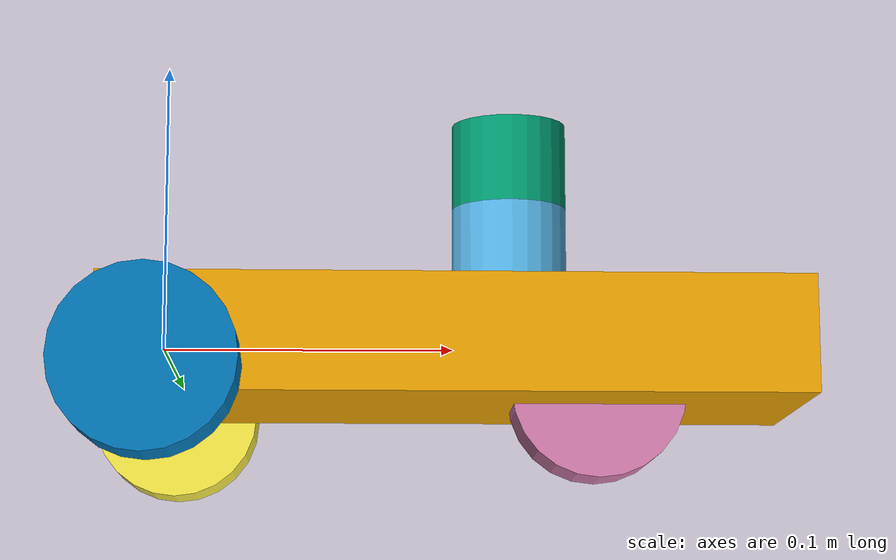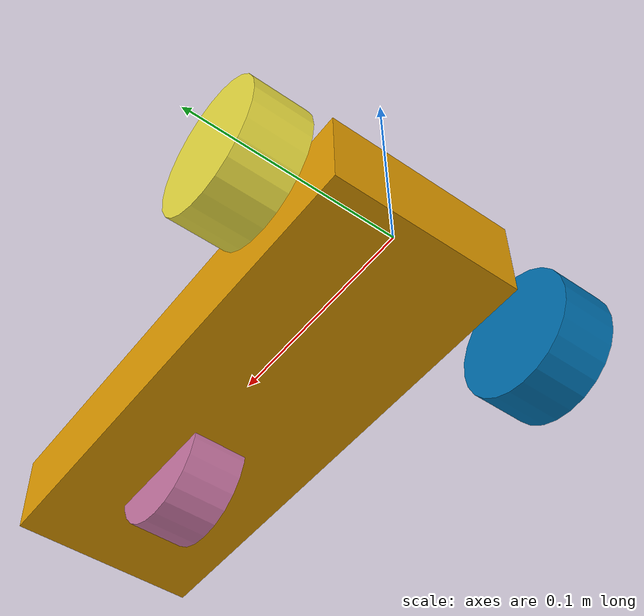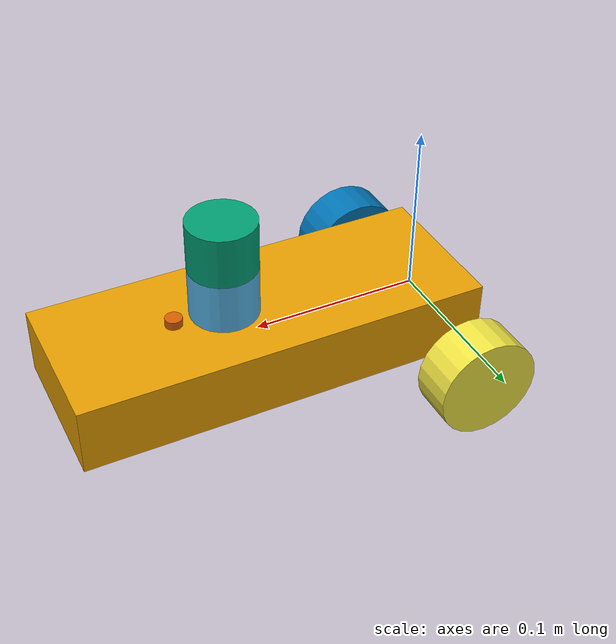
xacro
<?xml version="1.0"?>
<robot name="ackerman" xmlns:xacro="http://www.ros.org/wiki/xacro">

    <xacro:macro name="steeringless_wheel" params="x y name parent">

        <joint name="${name}_continuous" type="continuous">
            <origin xyz="${x} ${y} -0.015" rpy="-1.570796 0 0"/>
            <parent link="body_link"/>
            <child link="${name}_link"/>
            <axis xyz="0 0 1"/>
        </joint>

        <link name="${name}_link">
            <visual>
                <origin xyz="0 0 0" rpy="0 0 0"/>
                <geometry>
                    <cylinder radius="0.03" length="0.026"/>
                </geometry>
            </visual>
            <collision>
                <origin xyz="0 0 0" rpy="0 0 0"/>
                <geometry>
                    <cylinder radius="0.03" length="0.026"/>
                </geometry>
            </collision>
            <inertial>
                <origin xyz="0 0 0" rpy="0 0 0"/>
                <mass value="0.1"/>
                <inertia ixx="0.01" ixy="0" ixz="0" iyy="0.01" iyz="0" izz="0.01"/>
            </inertial>
        </link>

    </xacro:macro>

    <xacro:macro name="steering_wheel" params="x y name parent">

        <joint name="${name}_steering_revolute" type="revolute">
            <origin xyz="${x} ${y} 0" rpy="0 0 0"/>
            <parent link="${parent}"/>
            <child link="${name}_steering_link"/>
            <axis xyz="0 0 1"/>
            <limit lower="-1.0" upper="1.0" effort="10" velocity="1.0"/>
        </joint>

        <link name="${name}_steering_link">
            <visual>
                <origin xyz="0 0 0" rpy="0 0 0"/>
                <geometry>
                    <cylinder radius="0.005" length="0.05"/>
                </geometry>
            </visual>
            <collision>
                <origin xyz="0 0 0" rpy="0 0 0"/>
                <geometry>
                    <cylinder radius="0.005" length="0.05"/>
                </geometry>
            </collision>
            <inertial>
                <origin xyz="0 0 0" rpy="0 0 0"/>
                <mass value="0.01"/>
                <inertia ixx="0.001" ixy="0" ixz="0" iyy="0.001" iyz="0" izz="0.001"/>
            </inertial>
        </link>

        <joint name="${name}_joint" type="continuous">
                <origin xyz="0 0 -0.015" rpy="1.570796 0 0"/>
            <parent link="${name}_steering_link"/>
            <child link="${name}_link"/>
            <axis xyz="0 0 1"/>
        </joint>

        <link name="${name}_link">
            <visual>
                <origin xyz="0 0 0" rpy="0 0 0"/>
                <geometry>
                    <cylinder radius="0.03" length="0.026"/>
                </geometry>
            </visual>
            <collision>
                <origin xyz="0 0 0" rpy="0 0 0"/>
                <geometry>
                    <cylinder radius="0.03" length="0.026"/>
                </geometry>
            </collision>
            <inertial>
                <origin xyz="0 0 0" rpy="0 0 0"/>
                <mass value="0.1"/>
                <inertia ixx="0.01" ixy="0" ixz="0" iyy="0.01" iyz="0" izz="0.01"/>
            </inertial>
        </link>

    </xacro:macro>

    <link name="body_link">
        <visual>
            <origin xyz="0.1 0.0 0.0" rpy="0.0 0.0 0.0"/>
            <geometry>
                <box size="0.24 0.09 0.04"/>
            </geometry>
        </visual>
        <collision name="body_collision">
            <origin xyz="0.09 0.0 0.03" rpy="0.0 0.0 0.0"/>
            <geometry>
                <cylinder radius="0.15" length="0.1"/>
            </geometry>
        </collision>
        <inertial>
            <origin xyz="0.0 0.0 0.0" rpy="0.0 0.0 0.0"/>
            <mass value="5"/>
            <inertia ixx="1" ixy="0" ixz="0" iyy="1" iyz="0" izz="1"/>
        </inertial>
    </link>

    <joint name="laserbase_joint" type="fixed">
        <parent link="body_link"/>
        <child link="laserbase_link"/>
        <origin xyz="0.12 0 0.035" rpy="0 0 0"/>
    </joint>

    <link name="laserbase_link">
        <visual>
            <origin xyz="0 0 0" rpy="0 0 0"/>
            <geometry>
                <cylinder radius="0.02" length="0.03"/>
            </geometry>
        </visual>
        <collision>
            <origin xyz="0 0 0" rpy="0 0 0"/>
            <geometry>
                <cylinder radius="0.02" length="0.03"/>
            </geometry>
        </collision>
        <inertial>
            <origin xyz="0 0 0" rpy="0 0 0"/>
            <mass value="1.0"/>
            <inertia ixx="0.01" ixy="0" ixz="0" iyy="0.01" iyz="0" izz="0.01"/>
        </inertial>
    </link>

    <joint name="laser_joint" type="fixed">
        <parent link="laserbase_link"/>
        <child link="laser_link"/>
        <origin xyz="0 0 0.03" rpy="0 0 0"/>
    </joint>

    <link name="laser_link">
        <visual>
            <origin xyz="0 0 0" rpy="0 0 0"/>
            <geometry>
                <cylinder radius="0.02" length="0.03"/>
            </geometry>
        </visual>
        <collision>
            <origin xyz="0 0 0" rpy="0 0 0"/>
            <geometry>
                <cylinder radius="0.02" length="0.03"/>
            </geometry>
        </collision>
        <inertial>
            <origin xyz="0 0 0" rpy="0 0 0"/>
            <mass value="1.0"/>
            <inertia ixx="0.01" ixy="0" ixz="0" iyy="0.01" iyz="0" izz="0.01"/>
        </inertial>
    </link>

    <xacro:steeringless_wheel x="0" y="0.075" name="wheelRL" parent="body_link"/>
    <xacro:steeringless_wheel x="0" y="-0.075" name="wheelRR" parent="body_link"/>
    <xacro:steering_wheel x="0.15" y="0" name="wheelFC" parent="body_link"/>

    <!-- 配置 ROS2 Control -->
    <ros2_control name="GazeboSystem" type="system">
        <hardware>
            <plugin>gazebo_ros2_control/GazeboSystem</plugin>
        </hardware>
        <joint name="wheelRL_continuous">
            <command_interface name="velocity">
                <param name="min">-10</param>   <!-- rad/s -->
                <param name="max">10</param>    <!-- rad/s -->
            </command_interface>
            <state_interface name="position"/>
            <state_interface name="velocity"/>
        </joint>
        <joint name="wheelRR_continuous">
            <command_interface name="velocity">
                <param name="min">-10</param>   <!-- rad/s -->
                <param name="max">10</param>    <!-- rad/s -->
            </command_interface>
            <state_interface name="position"/>
            <state_interface name="velocity"/>
        </joint>
        <joint name="wheelFC_steering_revolute">
            <command_interface name="position">
                <param name="min">-1</param>   <!-- rad/s -->
                <param name="max">1</param>    <!-- rad/s -->
            </command_interface>
            <state_interface name="position"/>
            <state_interface name="velocity"/>
        </joint>
    </ros2_control>

    <!-- Gazebo 通用插件 -->
    <gazebo>
        <!-- 位姿输出 -->
        <plugin name="gazebo_ros_p3d" filename="libgazebo_ros_p3d.so">
            <!-- /odom -->
            <alwaysOn>true</alwaysOn>
            <updateRate>50.0</updateRate>
            <body_name>wheelFC_steering_link</body_name>
            <gaussianNoise>0.0</gaussianNoise>
        </plugin>

        <!-- 控制输入 -->
        <plugin filename="libgazebo_ros2_control.so" name="gazebo_ros2_control">
            <!-- /{controller_name}/commands -->
            <parameters>$(find agent_description)/config/ackerman_controller.yaml</parameters>
        </plugin>
    </gazebo>

    <!-- 激光雷达插件 -->
    <gazebo reference="laser_link">
        <sensor type="ray" name="lidar_sensor">
            <pose>0 0 0 0 0 0</pose>
            <visualize>true</visualize>
            <update_rate>40</update_rate>               <!-- 更新率 40Hz -->
            <ray>
                <scan>
                    <horizontal>                        <!-- 水平方向 -->
                        <samples>180</samples>
                        <min_angle>-1.5708</min_angle>
                        <max_angle>1.5708</max_angle>
                    </horizontal>
                    <vertical>                          <!-- 垂直方向 -->
                        <samples>16</samples>
                        <min_angle>-0.2618</min_angle>
                        <max_angle>0.2618</max_angle>
                    </vertical>
                </scan>
                <range>
                    <min>0.15</min>                     <!-- 最小探测距离 0.14m -->
                    <max>10.0</max>                     <!-- 最大探测距离 10m -->
                    <resolution>0.01</resolution>       <!-- 分辨率 0.01m -->
                </range>
            </ray>
            <plugin name="gazebo_ros_lidar_controller" filename="libgazebo_ros_ray_sensor.so">
                <!-- /gazebo_ros_lidar_controller/out -->
                <frame_name>laser_link</frame_name>
            </plugin>
        </sensor>
    </gazebo>

    <!-- 碰撞检测插件 -->
    <gazebo reference="body_link">
        <selfCollide>false</selfCollide>
        <sensor name="base_contact_sensor" type="contact">
            <always_on>true</always_on>
            <update_rate>100.0</update_rate>
            <contact>
                <collision>body_link_fixed_joint_lump__body_collision_collision</collision> <!-- 这个名字需要将xacro/urdf 转换为 sdf，使用 sdf 中的 collision 名字 -->
            </contact>
            <plugin filename="libgazebo_ros_bumper.so" name="base_gazebo_ros_bumper_controller">
                <!-- /bumper_states -->
            </plugin>
        </sensor>
    </gazebo>

</robot>
